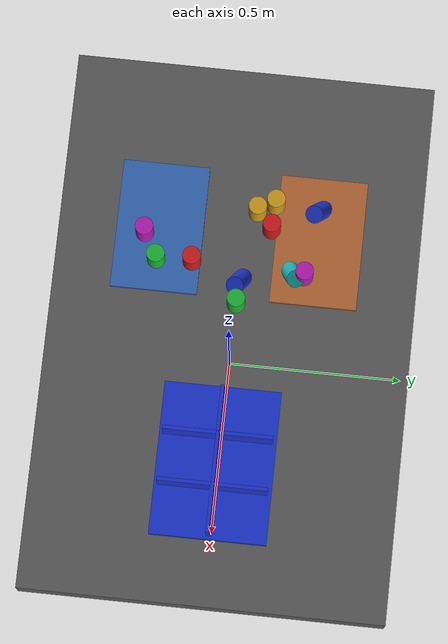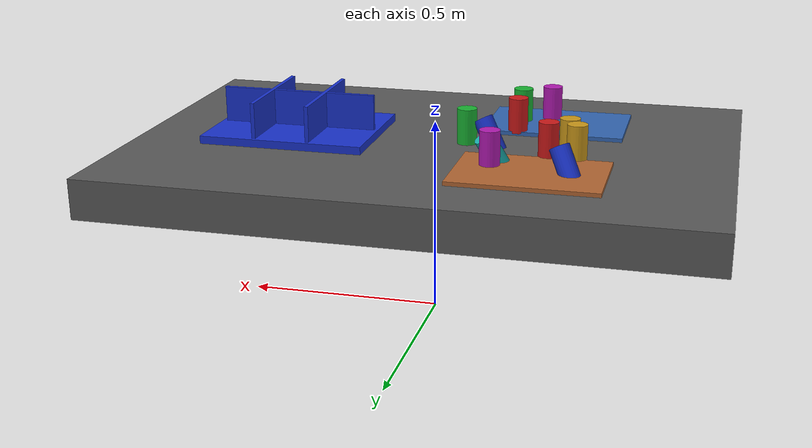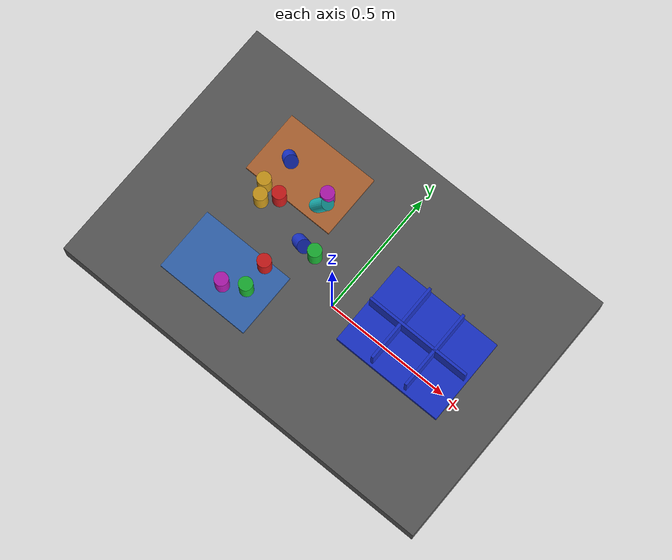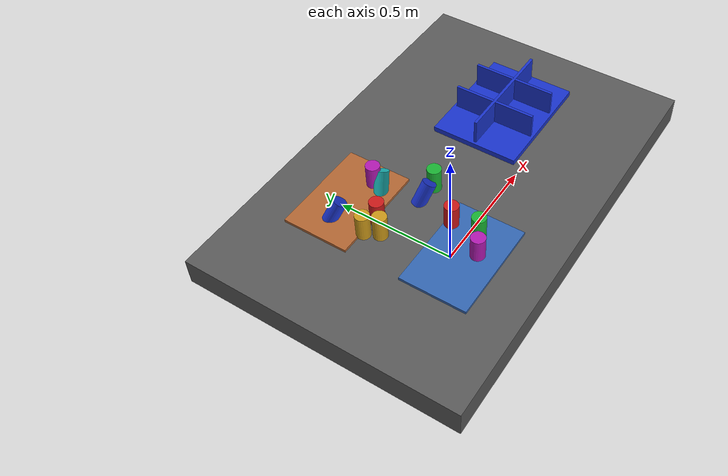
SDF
<?xml version="1.0" ?>
<sdf version="1.9">
  <!-- Standalone M1B scene.  The controller-backed Panda is spawned by the
       existing launch path; this file never alters the frozen M1A cube world. -->
  <world name="industrial_cylinder_v1">
    <physics name="bullet" type="bullet"><max_step_size>0.001</max_step_size><real_time_factor>1.0</real_time_factor></physics>
    <plugin name="gz::sim::systems::Physics" filename="gz-sim-physics-system"><engine><filename>gz-physics-bullet-featherstone-plugin</filename></engine></plugin>
    <plugin name="gz::sim::systems::UserCommands" filename="gz-sim-user-commands-system"/>
    <plugin name="gz::sim::systems::SceneBroadcaster" filename="gz-sim-scene-broadcaster-system"/>
    <plugin name="gz::sim::systems::Sensors" filename="gz-sim-sensors-system"><render_engine>ogre2</render_engine></plugin>
    <gravity>0 0 -9.81</gravity>
    <light type="directional" name="industrial_light"><pose>0 0 5 0 0 0</pose><direction>-0.3 0.2 -0.9</direction><diffuse>0.9 0.9 0.9 1</diffuse></light>
    <model name="industrial_work_table"><static>true</static><link name="link"><pose>0 0 0.4 0 0 0</pose><collision name="collision"><geometry><box><size>1.5 1.0 0.1</size></box></geometry></collision><visual name="visual"><geometry><box><size>1.5 1.0 0.1</size></box></geometry><material><diffuse>0.35 0.35 0.35 1</diffuse></material></visual></link></model>
    <model name="camera_fixture"><static>true</static><link name="camera_rgbd"><pose>-0.80 -0.80 1.40 0 0.77 0.93</pose><sensor name="front_rgbd" type="rgbd_camera"><always_on>1</always_on><update_rate>15</update_rate><topic>/xh/camera/rgbd</topic><camera><horizontal_fov>1.047</horizontal_fov><image><width>640</width><height>480</height><format>R8G8B8</format></image><clip><near>0.1</near><far>4.0</far></clip></camera></sensor></link></model>
    <model name="incoming_zone_a"><static>true</static><link name="link"><pose>-0.28 -0.22 0.455 0 0 0</pose><visual name="visual"><geometry><box><size>0.36 0.24 0.01</size></box></geometry><material><diffuse>0.2 0.4 0.7 1</diffuse></material></visual></link></model>
    <model name="incoming_zone_b"><static>true</static><link name="link"><pose>-0.28 0.22 0.455 0 0 0</pose><visual name="visual"><geometry><box><size>0.36 0.24 0.01</size></box></geometry><material><diffuse>0.7 0.4 0.2 1</diffuse></material></visual></link></model>
    <!-- M1B_RANDOM_PARTS_BEGIN -->
    <model name="cylinder_01"><pose>-0.3015 0.0869 0.5000 0.0000 0.0000 0.6417</pose><link name="link"><inertial><mass>0.06</mass></inertial><collision name="collision"><geometry><cylinder><radius>0.025</radius><length>0.09</length></cylinder></geometry></collision><visual name="visual"><geometry><cylinder><radius>0.025</radius><length>0.09</length></cylinder></geometry><material><diffuse>0.800 0.100 0.100 1</diffuse><specular>0.15 0.15 0.15 1</specular></material></visual></link></model>
    <model name="cylinder_02"><pose>-0.0843 0.0103 0.5000 3.1416 0.0000 -0.4952</pose><link name="link"><inertial><mass>0.06</mass></inertial><collision name="collision"><geometry><cylinder><radius>0.025</radius><length>0.09</length></cylinder></geometry></collision><visual name="visual"><geometry><cylinder><radius>0.025</radius><length>0.09</length></cylinder></geometry><material><diffuse>0.100 0.700 0.200 1</diffuse><specular>0.15 0.15 0.15 1</specular></material></visual></link></model>
    <model name="cylinder_03"><pose>-0.3617 0.2134 0.4800 0.4500 -0.3000 1.4663</pose><link name="link"><inertial><mass>0.06</mass></inertial><collision name="collision"><geometry><cylinder><radius>0.025</radius><length>0.09</length></cylinder></geometry></collision><visual name="visual"><geometry><cylinder><radius>0.025</radius><length>0.09</length></cylinder></geometry><material><diffuse>0.100 0.200 0.800 1</diffuse><specular>0.15 0.15 0.15 1</specular></material></visual></link></model>
    <model name="cylinder_04"><pose>-0.3710 0.0922 0.5000 0.0000 0.0000 0.2268</pose><link name="link"><inertial><mass>0.06</mass></inertial><collision name="collision"><geometry><cylinder><radius>0.025</radius><length>0.09</length></cylinder></geometry></collision><visual name="visual"><geometry><cylinder><radius>0.025</radius><length>0.09</length></cylinder></geometry><material><diffuse>0.800 0.600 0.100 1</diffuse><specular>0.15 0.15 0.15 1</specular></material></visual></link></model>
    <model name="cylinder_05"><pose>-0.1778 0.1885 0.5000 3.1416 0.0000 -2.6515</pose><link name="link"><inertial><mass>0.06</mass></inertial><collision name="collision"><geometry><cylinder><radius>0.025</radius><length>0.09</length></cylinder></geometry></collision><visual name="visual"><geometry><cylinder><radius>0.025</radius><length>0.09</length></cylinder></geometry><material><diffuse>0.700 0.100 0.700 1</diffuse><specular>0.15 0.15 0.15 1</specular></material></visual></link></model>
    <model name="cylinder_06"><pose>-0.1795 0.1565 0.4800 0.4500 -0.3000 2.5606</pose><link name="link"><inertial><mass>0.06</mass></inertial><collision name="collision"><geometry><cylinder><radius>0.025</radius><length>0.09</length></cylinder></geometry></collision><visual name="visual"><geometry><cylinder><radius>0.025</radius><length>0.09</length></cylinder></geometry><material><diffuse>0.100 0.700 0.700 1</diffuse><specular>0.15 0.15 0.15 1</specular></material></visual></link></model>
    <model name="cylinder_07"><pose>-0.1899 -0.1222 0.5000 0.0000 0.0000 0.4709</pose><link name="link"><inertial><mass>0.06</mass></inertial><collision name="collision"><geometry><cylinder><radius>0.025</radius><length>0.09</length></cylinder></geometry></collision><visual name="visual"><geometry><cylinder><radius>0.025</radius><length>0.09</length></cylinder></geometry><material><diffuse>0.800 0.100 0.100 1</diffuse><specular>0.15 0.15 0.15 1</specular></material></visual></link></model>
    <model name="cylinder_08"><pose>-0.1859 -0.2206 0.5000 3.1416 0.0000 -2.7593</pose><link name="link"><inertial><mass>0.06</mass></inertial><collision name="collision"><geometry><cylinder><radius>0.025</radius><length>0.09</length></cylinder></geometry></collision><visual name="visual"><geometry><cylinder><radius>0.025</radius><length>0.09</length></cylinder></geometry><material><diffuse>0.100 0.700 0.200 1</diffuse><specular>0.15 0.15 0.15 1</specular></material></visual></link></model>
    <model name="cylinder_09"><pose>-0.1438 0.0128 0.4800 0.4500 -0.3000 1.6731</pose><link name="link"><inertial><mass>0.06</mass></inertial><collision name="collision"><geometry><cylinder><radius>0.025</radius><length>0.09</length></cylinder></geometry></collision><visual name="visual"><geometry><cylinder><radius>0.025</radius><length>0.09</length></cylinder></geometry><material><diffuse>0.100 0.200 0.800 1</diffuse><specular>0.15 0.15 0.15 1</specular></material></visual></link></model>
    <model name="cylinder_10"><pose>-0.3467 0.0438 0.5000 0.0000 0.0000 1.8650</pose><link name="link"><inertial><mass>0.06</mass></inertial><collision name="collision"><geometry><cylinder><radius>0.025</radius><length>0.09</length></cylinder></geometry></collision><visual name="visual"><geometry><cylinder><radius>0.025</radius><length>0.09</length></cylinder></geometry><material><diffuse>0.800 0.600 0.100 1</diffuse><specular>0.15 0.15 0.15 1</specular></material></visual></link></model>
    <model name="cylinder_11"><pose>-0.2579 -0.2596 0.5000 3.1416 0.0000 1.6569</pose><link name="link"><inertial><mass>0.06</mass></inertial><collision name="collision"><geometry><cylinder><radius>0.025</radius><length>0.09</length></cylinder></geometry></collision><visual name="visual"><geometry><cylinder><radius>0.025</radius><length>0.09</length></cylinder></geometry><material><diffuse>0.700 0.100 0.700 1</diffuse><specular>0.15 0.15 0.15 1</specular></material></visual></link></model>
    <!-- M1B_RANDOM_PARTS_END -->
    <model name="blue_partition_bin"><static>true</static><pose>0.36 0 0.45 0 0 0</pose><link name="link"><collision name="floor"><pose>0 0 0.01 0 0 0</pose><geometry><box><size>0.42 0.32 0.02</size></box></geometry></collision><visual name="floor_visual"><pose>0 0 0.01 0 0 0</pose><geometry><box><size>0.42 0.32 0.02</size></box></geometry><material><diffuse>0.1 0.2 0.8 1</diffuse></material></visual><visual name="row_divider"><pose>0 0 0.06 0 0 0</pose><geometry><box><size>0.40 0.01 0.10</size></box></geometry><material><diffuse>0.1 0.2 0.8 1</diffuse></material></visual><visual name="col_divider_a"><pose>-0.07 0 0.06 0 0 0</pose><geometry><box><size>0.01 0.30 0.10</size></box></geometry><material><diffuse>0.1 0.2 0.8 1</diffuse></material></visual><visual name="col_divider_b"><pose>0.07 0 0.06 0 0 0</pose><geometry><box><size>0.01 0.30 0.10</size></box></geometry><material><diffuse>0.1 0.2 0.8 1</diffuse></material></visual></link></model>
    <!-- Reserved only: second table, bin transport corridor, stackable-bin
         collision volume, and second arm mounting namespace. -->
  </world>
</sdf>
